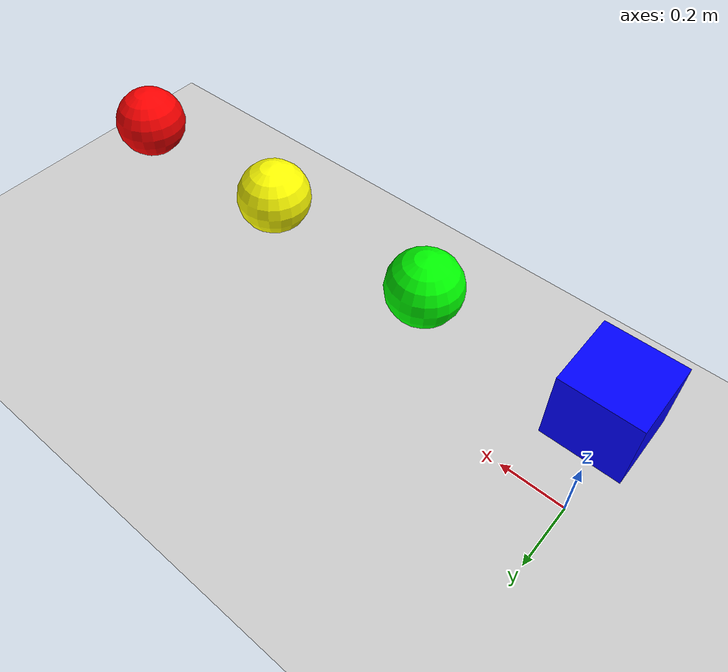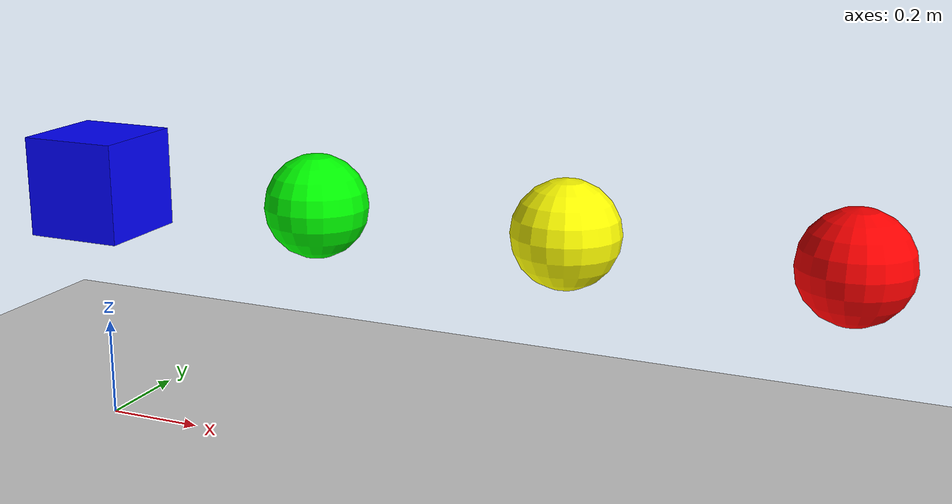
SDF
<?xml version="1.0" ?>
<sdf version="1.8">
  <world name="test_robot">

    <!-- Gravity -->
    <gravity>0 0 -9.81</gravity>

    <!-- Ground plane -->
    <model name="ground_plane">
        <static>true</static>
        <link name="link">
            <collision name="collision">
            <geometry>
                <plane>
                <normal>0 0 1</normal>
                </plane>
            </geometry>
            </collision>
            <visual name="visual">
            <geometry>
                <plane>
                <normal>0 0 1</normal>
                <size>100 100</size>
                </plane>
            </geometry>
            <material>
                <ambient>0.8 0.8 0.8 1</ambient>
                <diffuse>0.8 0.8 0.8 1</diffuse>
                <specular>0.8 0.8 0.8 1</specular>
            </material>
            </visual>
        </link>
    </model>

    <!-- Robot Model -->
    <model name="cdpr_robot">
      <pose>0 0 0 0 0 0</pose>

      <!-- Root link (link0) -->
      <link name="link0">
        <pose>0 0 0.5 0 0 0</pose>
        <inertial>
          <mass>1.0</mass>
          <inertia>
            <ixx>0.01</ixx>
            <iyy>0.01</iyy>
            <izz>0.01</izz>
          </inertia>
        </inertial>
        <collision name="collision0">
          <geometry>
            <box>
              <size>0.2 0.2 0.2</size>
            </box>
          </geometry>
        </collision>
        <visual name="visual0">
          <geometry>
            <box>
              <size>0.2 0.2 0.2</size>
            </box>
          </geometry>
          <material>
            <ambient>0 0 1 1</ambient>
            <diffuse>0 0 1 1</diffuse>
          </material>
        </visual>
      </link>

      <!-- Intermediate links -->
      <link name="link1">
        <pose>0.5 0 0.5 0 0 0</pose>
        <inertial>
          <mass>0.5</mass>
          <inertia>
            <ixx>0.005</ixx>
            <iyy>0.005</iyy>
            <izz>0.005</izz>
          </inertia>
        </inertial>
        <visual name="visual1">
          <geometry>
            <sphere>
              <radius>0.1</radius>
            </sphere>
          </geometry>
          <material>
            <ambient>0 1 0 1</ambient>
            <diffuse>0 1 0 1</diffuse>
          </material>
        </visual>
      </link>

      <link name="link2">
        <pose>1.0 0 0.5 0 0 0</pose>
        <inertial>
          <mass>0.5</mass>
          <inertia>
            <ixx>0.005</ixx>
            <iyy>0.005</iyy>
            <izz>0.005</izz>
          </inertia>
        </inertial>
        <visual name="visual2">
          <geometry>
            <sphere>
              <radius>0.1</radius>
            </sphere>
          </geometry>
          <material>
            <ambient>1 1 0 1</ambient>
            <diffuse>1 1 0 1</diffuse>
          </material>
        </visual>
      </link>

      <!-- Extremal link (link3) - kinematic to remain fixed -->
      <link name="link3">
        <pose>1.5 0 0.5 0 0 0</pose>
        <kinematic>true</kinematic>
        <visual name="visual3">
          <geometry>
            <sphere>
              <radius>0.1</radius>
            </sphere>
          </geometry>
          <material>
            <ambient>1 0 0 1</ambient>
            <diffuse>1 0 0 1</diffuse>
          </material>
        </visual>
      </link>

      <!-- Joints connecting links -->
      <joint name="joint0_1" type="revolute">
        <parent>link0</parent>
        <child>link1</child>
        <axis>
          <xyz>0 0 1</xyz>
        </axis>
      </joint>

      <joint name="joint1_2" type="revolute">
        <parent>link1</parent>
        <child>link2</child>
        <axis>
          <xyz>0 0 1</xyz>
        </axis>
      </joint>

      <joint name="joint2_3" type="revolute">
        <parent>link2</parent>
        <child>link3</child>
        <axis>
          <xyz>0 0 1</xyz>
        </axis>
      </joint>
    </model>

    <!-- Pose publisher to move root link -->
    <plugin name="pose_publisher" filename="libignition-gazebo-pose-publisher-system.so">
        <link>link0</link>
        <model>cdpr_robot</model>
        <publish_link_pose>true</publish_link_pose>
        <publish_visual_pose>false</publish_visual_pose>
        <publish_collision_pose>false</publish_collision_pose>
        <publish_sensor_pose>false</publish_sensor_pose>
        <publish_model_pose>false</publish_model_pose>
        <publish_nested_model_pose>false</publish_nested_model_pose>
        <use_pose_vector_msg>false</use_pose_vector_msg>
        <update_frequency>-1</update_frequency>
    </plugin>

  </world>
</sdf>
